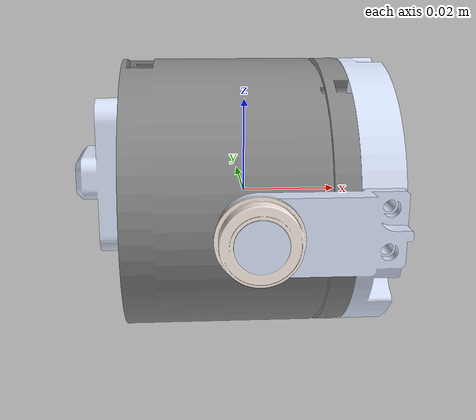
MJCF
<mujoco model="link6_obj">
  <asset>
    <mesh name="link6_00" file="link6_00.obj"/>
    <mesh name="link6_01" file="link6_01.obj"/>
    <mesh name="link6_02" file="link6_02.obj"/>
    <material name="link6_00_mat" rgba="0.533333 0.533333 0.533333 1.000000"/>
    <material name="link6_01_mat" rgba="1.000000 0.949020 0.909804 1.000000"/>
    <material name="link6_02_mat" rgba="0.866667 0.909804 1.000000 1.000000"/>
  </asset>
  <worldbody>
    <body name="link6_obj">
      <geom type="mesh" mesh="link6_00" material="link6_00_mat" contype="0" conaffinity="0" group="1"/>
      <geom type="mesh" mesh="link6_01" material="link6_01_mat" contype="0" conaffinity="0" group="1"/>
      <geom type="mesh" mesh="link6_02" material="link6_02_mat" contype="0" conaffinity="0" group="1"/>
    </body>
  </worldbody>
</mujoco>
